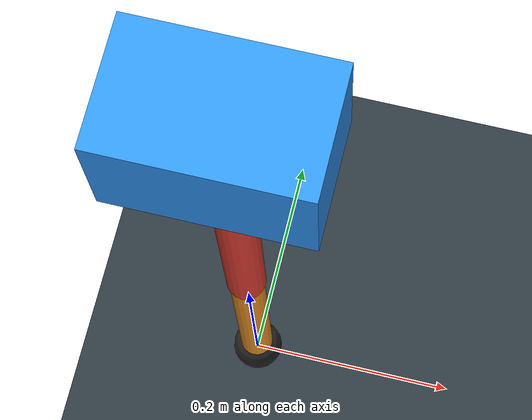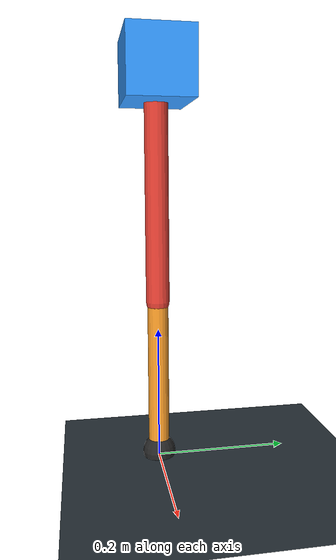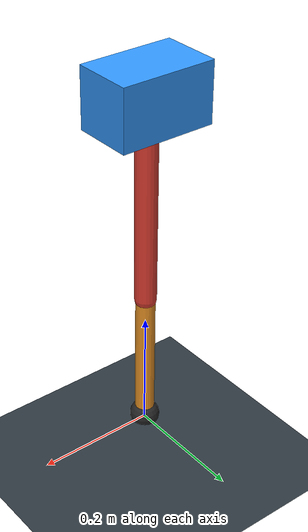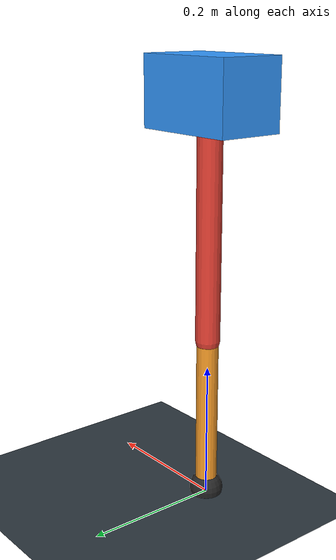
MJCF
<mujoco model="single_axis_two_bar">
  <compiler angle="radian" inertiafromgeom="true"/>
  <option timestep="0.001" integrator="implicitfast" gravity="0 0 -9.81"/>
  <default>
    <joint damping="0.08"/>
    <geom friction="1.2 0.01 0.0001" condim="3"/>
  </default>
  <worldbody>
    <geom name="floor" type="plane" size="5 5 0.1" rgba="0.18 0.22 0.25 1"/>
    <body name="carriage" pos="0 0 0.593312465165052">
      <joint name="pole_slide" type="slide" axis="0 0 1"/>
      <geom name="payload" type="box" size="0.08 0.05 0.05" mass="2.3401437493871957" rgba="0.2 0.6 1 1"/>
      <body name="thigh" pos="0 0 0">
        <joint name="hip" type="hinge" axis="0 1 0"/>
        <geom name="thigh_link" type="capsule" fromto="0 0 0 0 0 -0.34971515148581234" size="0.018" mass="0.24917666651165804" rgba="0.9 0.25 0.2 1"/>
        <body name="shank" pos="0 0 -0.34971515148581234">
          <joint name="knee" type="hinge" axis="0 1 0"/>
          <geom name="shank_link" type="capsule" fromto="0 0 0 0 0 -0.23617398785960203" size="0.016" mass="0.16827708711387612" rgba="0.95 0.6 0.15 1"/>
          <geom name="foot" type="sphere" pos="0 0 -0.23617398785960203" size="0.025" mass="0.03" rgba="0.15 0.15 0.15 1"/>
          <site name="toe" pos="0 0 -0.23617398785960203" size="0.008"/>
        </body>
      </body>
    </body>
  </worldbody>
  <actuator>
    <motor name="hip_motor" joint="hip" ctrlrange="-27.91247691397873 27.91247691397873"/>
    <motor name="knee_motor" joint="knee" ctrlrange="-97.37010142936042 97.37010142936042"/>
  </actuator>
</mujoco>
